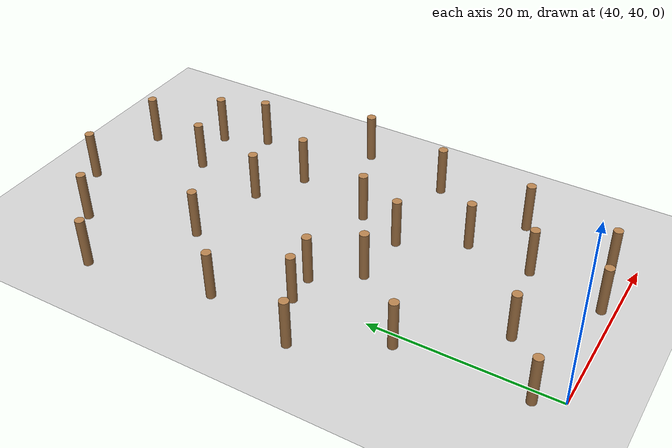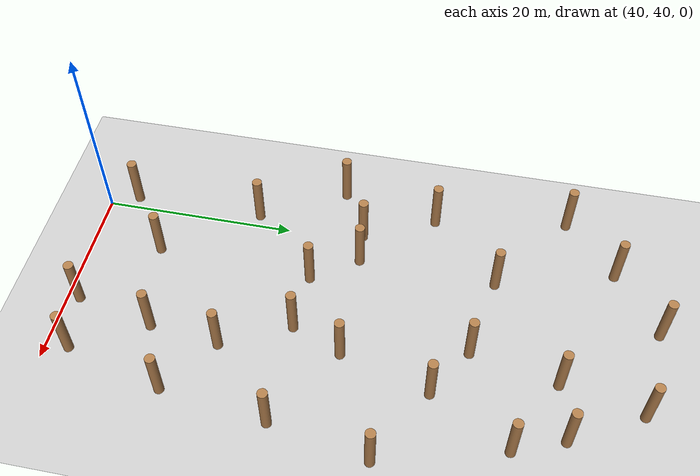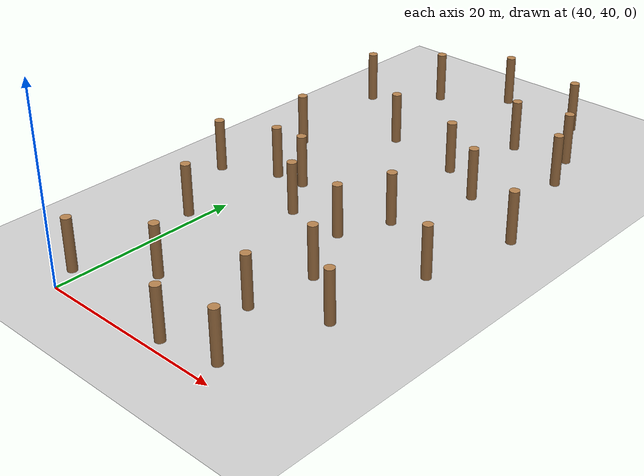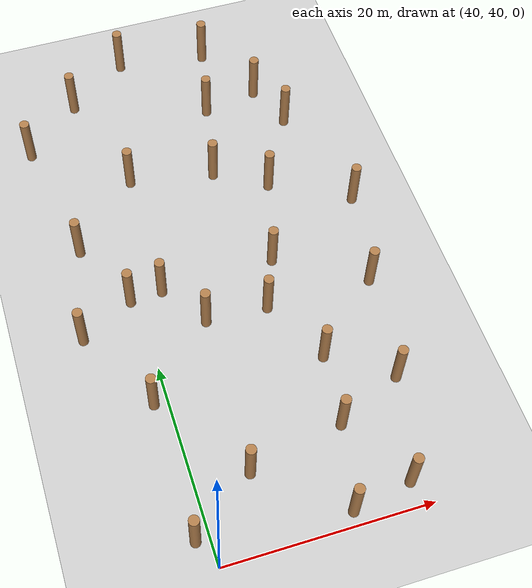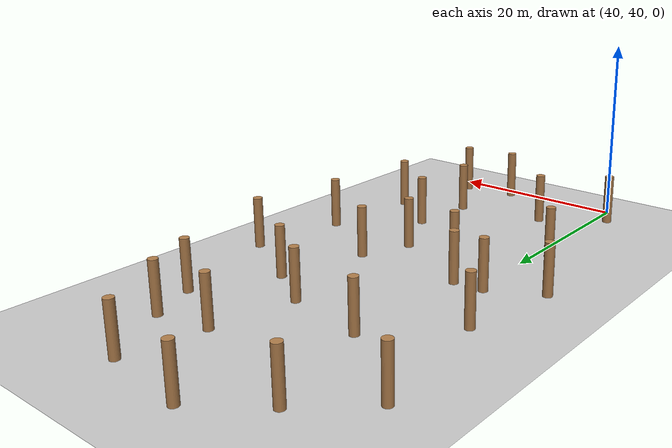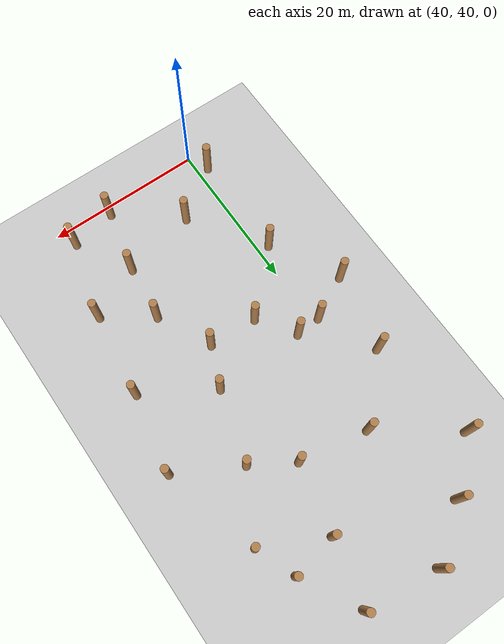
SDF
<sdf version="1.6">
 <world name="default">
  <model name="ground_plane">
   <static>1</static>
   <link name="link">
    <collision name="collision">
     <geometry><plane><normal>0 0 1</normal><size>100 100</size></plane></geometry>
     <surface><friction><ode><mu>100</mu><mu2>50</mu2></ode></friction></surface>
    </collision>
    <visual name="visual">
     <cast_shadows>0</cast_shadows>
     <geometry><plane><normal>0 0 1</normal><size>100 100</size></plane></geometry>
     <material>
      <script><uri>file://media/materials/scripts/gazebo.material</uri><name>Gazebo/Grey</name></script>
     </material>
    </visual>
   </link>
  </model>
  <model name="WoodPillars_1">
   <link name="link_clone_12">
    <inertial>
     <mass>1</mass>
     <inertia><ixx>0.145833</ixx><ixy>0</ixy><ixz>0</ixz><iyy>0.145833</iyy><iyz>0</iyz><izz>0.125</izz></inertia>
    </inertial>
    <pose>36.6063 2.3916 -3e-06 0 -0 -0.001289</pose>
    <visual name="visual">
     <geometry><cylinder><radius>0.5</radius><length>5.50507</length></cylinder></geometry>
     <material>
      <script><name>Gazebo/Wood</name><uri>file://media/materials/scripts/gazebo.material</uri></script>
      <shader type="pixel"/>
     </material>
    </visual>
    <collision name="collision">
     <geometry><cylinder><radius>0.5</radius><length>5.50507</length></cylinder></geometry>
     <surface>
      <friction>
       <ode><mu>1</mu><mu2>1</mu2><fdir1>0 0 0</fdir1><slip1>0</slip1><slip2>0</slip2></ode>
       <torsional>
        <coefficient>1</coefficient>
        <patch_radius>0</patch_radius>
        <surface_radius>0</surface_radius>
        <use_patch_radius>1</use_patch_radius>
        <ode><slip>0</slip></ode>
       </torsional>
      </friction>
      <bounce><restitution_coefficient>0</restitution_coefficient><threshold>1e+06</threshold></bounce>
      <contact>
       <collide_without_contact>0</collide_without_contact>
       <collide_without_contact_bitmask>1</collide_without_contact_bitmask>
       <collide_bitmask>1</collide_bitmask>
       <ode>
        <soft_cfm>0</soft_cfm>
        <soft_erp>0.2</soft_erp>
        <kp>1e+13</kp>
        <kd>1</kd>
        <max_vel>0.01</max_vel>
        <min_depth>0</min_depth>
       </ode>
       <bullet>
        <split_impulse>1</split_impulse>
        <split_impulse_penetration_threshold>-0.01</split_impulse_penetration_threshold>
        <soft_cfm>0</soft_cfm>
        <soft_erp>0.2</soft_erp>
        <kp>1e+13</kp>
        <kd>1</kd>
       </bullet>
      </contact>
     </surface>
    </collision>
   </link>
   <link name="link_clone_13">
    <inertial>
     <mass>1</mass>
     <inertia><ixx>0.145833</ixx><ixy>0</ixy><ixz>0</ixz><iyy>0.145833</iyy><iyz>0</iyz><izz>0.125</izz></inertia>
    </inertial>
    <pose>32.2715 -23.3528 -3e-06 0 -0 -0.001289</pose>
    <visual name="visual">
     <geometry><cylinder><radius>0.5</radius><length>5.50507</length></cylinder></geometry>
     <material>
      <script><name>Gazebo/Wood</name><uri>file://media/materials/scripts/gazebo.material</uri></script>
      <shader type="pixel"/>
     </material>
    </visual>
    <collision name="collision">
     <geometry><cylinder><radius>0.5</radius><length>5.50507</length></cylinder></geometry>
     <surface>
      <friction>
       <ode><mu>1</mu><mu2>1</mu2><fdir1>0 0 0</fdir1><slip1>0</slip1><slip2>0</slip2></ode>
       <torsional>
        <coefficient>1</coefficient>
        <patch_radius>0</patch_radius>
        <surface_radius>0</surface_radius>
        <use_patch_radius>1</use_patch_radius>
        <ode><slip>0</slip></ode>
       </torsional>
      </friction>
      <bounce><restitution_coefficient>0</restitution_coefficient><threshold>1e+06</threshold></bounce>
      <contact>
       <collide_without_contact>0</collide_without_contact>
       <collide_without_contact_bitmask>1</collide_without_contact_bitmask>
       <collide_bitmask>1</collide_bitmask>
       <ode>
        <soft_cfm>0</soft_cfm>
        <soft_erp>0.2</soft_erp>
        <kp>1e+13</kp>
        <kd>1</kd>
        <max_vel>0.01</max_vel>
        <min_depth>0</min_depth>
       </ode>
       <bullet>
        <split_impulse>1</split_impulse>
        <split_impulse_penetration_threshold>-0.01</split_impulse_penetration_threshold>
        <soft_cfm>0</soft_cfm>
        <soft_erp>0.2</soft_erp>
        <kp>1e+13</kp>
        <kd>1</kd>
       </bullet>
      </contact>
     </surface>
    </collision>
   </link>
   <link name="link_clone_16">
    <inertial>
     <mass>1</mass>
     <inertia><ixx>0.145833</ixx><ixy>0</ixy><ixz>0</ixz><iyy>0.145833</iyy><iyz>0</iyz><izz>0.125</izz></inertia>
    </inertial>
    <pose>32.9662 -11.9429 -3e-06 0 -0 -0.001289</pose>
    <visual name="visual">
     <geometry><cylinder><radius>0.5</radius><length>5.50507</length></cylinder></geometry>
     <material>
      <script><name>Gazebo/Wood</name><uri>file://media/materials/scripts/gazebo.material</uri></script>
      <shader type="pixel"/>
     </material>
    </visual>
    <collision name="collision">
     <geometry><cylinder><radius>0.5</radius><length>5.50507</length></cylinder></geometry>
     <surface>
      <friction>
       <ode><mu>1</mu><mu2>1</mu2><fdir1>0 0 0</fdir1><slip1>0</slip1><slip2>0</slip2></ode>
       <torsional>
        <coefficient>1</coefficient>
        <patch_radius>0</patch_radius>
        <surface_radius>0</surface_radius>
        <use_patch_radius>1</use_patch_radius>
        <ode><slip>0</slip></ode>
       </torsional>
      </friction>
      <bounce><restitution_coefficient>0</restitution_coefficient><threshold>1e+06</threshold></bounce>
      <contact>
       <collide_without_contact>0</collide_without_contact>
       <collide_without_contact_bitmask>1</collide_without_contact_bitmask>
       <collide_bitmask>1</collide_bitmask>
       <ode>
        <soft_cfm>0</soft_cfm>
        <soft_erp>0.2</soft_erp>
        <kp>1e+13</kp>
        <kd>1</kd>
        <max_vel>0.01</max_vel>
        <min_depth>0</min_depth>
       </ode>
       <bullet>
        <split_impulse>1</split_impulse>
        <split_impulse_penetration_threshold>-0.01</split_impulse_penetration_threshold>
        <soft_cfm>0</soft_cfm>
        <soft_erp>0.2</soft_erp>
        <kp>1e+13</kp>
        <kd>1</kd>
       </bullet>
      </contact>
     </surface>
    </collision>
   </link>
   <link name="link_clone_22">
    <inertial>
     <mass>1</mass>
     <inertia><ixx>0.145833</ixx><ixy>0</ixy><ixz>0</ixz><iyy>0.145833</iyy><iyz>0</iyz><izz>0.125</izz></inertia>
    </inertial>
    <pose>27.313 9.05961 -2e-06 0 -0 -0.001289</pose>
    <visual name="visual">
     <geometry><cylinder><radius>0.5</radius><length>5.50507</length></cylinder></geometry>
     <material>
      <script><name>Gazebo/Wood</name><uri>file://media/materials/scripts/gazebo.material</uri></script>
      <shader type="pixel"/>
     </material>
    </visual>
    <collision name="collision">
     <geometry><cylinder><radius>0.5</radius><length>5.50507</length></cylinder></geometry>
     <surface>
      <friction>
       <ode><mu>1</mu><mu2>1</mu2><fdir1>0 0 0</fdir1><slip1>0</slip1><slip2>0</slip2></ode>
       <torsional>
        <coefficient>1</coefficient>
        <patch_radius>0</patch_radius>
        <surface_radius>0</surface_radius>
        <use_patch_radius>1</use_patch_radius>
        <ode><slip>0</slip></ode>
       </torsional>
      </friction>
      <bounce><restitution_coefficient>0</restitution_coefficient><threshold>1e+06</threshold></bounce>
      <contact>
       <collide_without_contact>0</collide_without_contact>
       <collide_without_contact_bitmask>1</collide_without_contact_bitmask>
       <collide_bitmask>1</collide_bitmask>
       <ode>
        <soft_cfm>0</soft_cfm>
        <soft_erp>0.2</soft_erp>
        <kp>1e+13</kp>
        <kd>1</kd>
        <max_vel>0.01</max_vel>
        <min_depth>0</min_depth>
       </ode>
       <bullet>
        <split_impulse>1</split_impulse>
        <split_impulse_penetration_threshold>-0.01</split_impulse_penetration_threshold>
        <soft_cfm>0</soft_cfm>
        <soft_erp>0.2</soft_erp>
        <kp>1e+13</kp>
        <kd>1</kd>
       </bullet>
      </contact>
     </surface>
    </collision>
   </link>
   <link name="link_clone_23">
    <inertial>
     <mass>1</mass>
     <inertia><ixx>0.145833</ixx><ixy>0</ixy><ixz>0</ixz><iyy>0.145833</iyy><iyz>0</iyz><izz>0.125</izz></inertia>
    </inertial>
    <pose>29.5176 -4.71623 -3e-06 0 -0 -0.001289</pose>
    <visual name="visual">
     <geometry><cylinder><radius>0.5</radius><length>5.50507</length></cylinder></geometry>
     <material>
      <script><name>Gazebo/Wood</name><uri>file://media/materials/scripts/gazebo.material</uri></script>
      <shader type="pixel"/>
     </material>
    </visual>
    <collision name="collision">
     <geometry><cylinder><radius>0.5</radius><length>5.50507</length></cylinder></geometry>
     <surface>
      <friction>
       <ode><mu>1</mu><mu2>1</mu2><fdir1>0 0 0</fdir1><slip1>0</slip1><slip2>0</slip2></ode>
       <torsional>
        <coefficient>1</coefficient>
        <patch_radius>0</patch_radius>
        <surface_radius>0</surface_radius>
        <use_patch_radius>1</use_patch_radius>
        <ode><slip>0</slip></ode>
       </torsional>
      </friction>
      <bounce><restitution_coefficient>0</restitution_coefficient><threshold>1e+06</threshold></bounce>
      <contact>
       <collide_without_contact>0</collide_without_contact>
       <collide_without_contact_bitmask>1</collide_without_contact_bitmask>
       <collide_bitmask>1</collide_bitmask>
       <ode>
        <soft_cfm>0</soft_cfm>
        <soft_erp>0.2</soft_erp>
        <kp>1e+13</kp>
        <kd>1</kd>
        <max_vel>0.01</max_vel>
        <min_depth>0</min_depth>
       </ode>
       <bullet>
        <split_impulse>1</split_impulse>
        <split_impulse_penetration_threshold>-0.01</split_impulse_penetration_threshold>
        <soft_cfm>0</soft_cfm>
        <soft_erp>0.2</soft_erp>
        <kp>1e+13</kp>
        <kd>1</kd>
       </bullet>
      </contact>
     </surface>
    </collision>
   </link>
   <link name="link_clone_28">
    <inertial>
     <mass>1</mass>
     <inertia><ixx>0.145833</ixx><ixy>0</ixy><ixz>0</ixz><iyy>0.145833</iyy><iyz>0</iyz><izz>0.125</izz></inertia>
    </inertial>
    <pose>27.5353 -14.766 -3e-06 0 -0 -0.001289</pose>
    <visual name="visual">
     <geometry><cylinder><radius>0.5</radius><length>5.50507</length></cylinder></geometry>
     <material>
      <script><name>Gazebo/Wood</name><uri>file://media/materials/scripts/gazebo.material</uri></script>
      <shader type="pixel"/>
     </material>
    </visual>
    <collision name="collision">
     <geometry><cylinder><radius>0.5</radius><length>5.50507</length></cylinder></geometry>
     <surface>
      <friction>
       <ode><mu>1</mu><mu2>1</mu2><fdir1>0 0 0</fdir1><slip1>0</slip1><slip2>0</slip2></ode>
       <torsional>
        <coefficient>1</coefficient>
        <patch_radius>0</patch_radius>
        <surface_radius>0</surface_radius>
        <use_patch_radius>1</use_patch_radius>
        <ode><slip>0</slip></ode>
       </torsional>
      </friction>
      <bounce><restitution_coefficient>0</restitution_coefficient><threshold>1e+06</threshold></bounce>
      <contact>
       <collide_without_contact>0</collide_without_contact>
       <collide_without_contact_bitmask>1</collide_without_contact_bitmask>
       <collide_bitmask>1</collide_bitmask>
       <ode>
        <soft_cfm>0</soft_cfm>
        <soft_erp>0.2</soft_erp>
        <kp>1e+13</kp>
        <kd>1</kd>
        <max_vel>0.01</max_vel>
        <min_depth>0</min_depth>
       </ode>
       <bullet>
        <split_impulse>1</split_impulse>
        <split_impulse_penetration_threshold>-0.01</split_impulse_penetration_threshold>
        <soft_cfm>0</soft_cfm>
        <soft_erp>0.2</soft_erp>
        <kp>1e+13</kp>
        <kd>1</kd>
       </bullet>
      </contact>
     </surface>
    </collision>
   </link>
   <link name="link_clone_29">
    <inertial>
     <mass>1</mass>
     <inertia><ixx>0.145833</ixx><ixy>0</ixy><ixz>0</ixz><iyy>0.145833</iyy><iyz>0</iyz><izz>0.125</izz></inertia>
    </inertial>
    <pose>39.4401 -16.2696 -4e-06 0 -0 -0.001289</pose>
    <visual name="visual">
     <geometry><cylinder><radius>0.5</radius><length>5.50507</length></cylinder></geometry>
     <material>
      <script><name>Gazebo/Wood</name><uri>file://media/materials/scripts/gazebo.material</uri></script>
      <shader type="pixel"/>
     </material>
    </visual>
    <collision name="collision">
     <geometry><cylinder><radius>0.5</radius><length>5.50507</length></cylinder></geometry>
     <surface>
      <friction>
       <ode><mu>1</mu><mu2>1</mu2><fdir1>0 0 0</fdir1><slip1>0</slip1><slip2>0</slip2></ode>
       <torsional>
        <coefficient>1</coefficient>
        <patch_radius>0</patch_radius>
        <surface_radius>0</surface_radius>
        <use_patch_radius>1</use_patch_radius>
        <ode><slip>0</slip></ode>
       </torsional>
      </friction>
      <bounce><restitution_coefficient>0</restitution_coefficient><threshold>1e+06</threshold></bounce>
      <contact>
       <collide_without_contact>0</collide_without_contact>
       <collide_without_contact_bitmask>1</collide_without_contact_bitmask>
       <collide_bitmask>1</collide_bitmask>
       <ode>
        <soft_cfm>0</soft_cfm>
        <soft_erp>0.2</soft_erp>
        <kp>1e+13</kp>
        <kd>1</kd>
        <max_vel>0.01</max_vel>
        <min_depth>0</min_depth>
       </ode>
       <bullet>
        <split_impulse>1</split_impulse>
        <split_impulse_penetration_threshold>-0.01</split_impulse_penetration_threshold>
        <soft_cfm>0</soft_cfm>
        <soft_erp>0.2</soft_erp>
        <kp>1e+13</kp>
        <kd>1</kd>
       </bullet>
      </contact>
     </surface>
    </collision>
   </link>
   <link name="link_clone_33">
    <inertial>
     <mass>1</mass>
     <inertia><ixx>0.145833</ixx><ixy>0</ixy><ixz>0</ixz><iyy>0.145833</iyy><iyz>0</iyz><izz>0.125</izz></inertia>
    </inertial>
    <pose>39.6457 18.8804 -3e-06 0 -0 -0.001289</pose>
    <visual name="visual">
     <geometry><cylinder><radius>0.5</radius><length>5.50507</length></cylinder></geometry>
     <material>
      <script><name>Gazebo/Wood</name><uri>file://media/materials/scripts/gazebo.material</uri></script>
      <shader type="pixel"/>
     </material>
    </visual>
    <collision name="collision">
     <geometry><cylinder><radius>0.5</radius><length>5.50507</length></cylinder></geometry>
     <surface>
      <friction>
       <ode><mu>1</mu><mu2>1</mu2><fdir1>0 0 0</fdir1><slip1>0</slip1><slip2>0</slip2></ode>
       <torsional>
        <coefficient>1</coefficient>
        <patch_radius>0</patch_radius>
        <surface_radius>0</surface_radius>
        <use_patch_radius>1</use_patch_radius>
        <ode><slip>0</slip></ode>
       </torsional>
      </friction>
      <bounce><restitution_coefficient>0</restitution_coefficient><threshold>1e+06</threshold></bounce>
      <contact>
       <collide_without_contact>0</collide_without_contact>
       <collide_without_contact_bitmask>1</collide_without_contact_bitmask>
       <collide_bitmask>1</collide_bitmask>
       <ode>
        <soft_cfm>0</soft_cfm>
        <soft_erp>0.2</soft_erp>
        <kp>1e+13</kp>
        <kd>1</kd>
        <max_vel>0.01</max_vel>
        <min_depth>0</min_depth>
       </ode>
       <bullet>
        <split_impulse>1</split_impulse>
        <split_impulse_penetration_threshold>-0.01</split_impulse_penetration_threshold>
        <soft_cfm>0</soft_cfm>
        <soft_erp>0.2</soft_erp>
        <kp>1e+13</kp>
        <kd>1</kd>
       </bullet>
      </contact>
     </surface>
    </collision>
   </link>
   <link name="link_clone_5">
    <inertial>
     <mass>1</mass>
     <inertia><ixx>0.145833</ixx><ixy>0</ixy><ixz>0</ixz><iyy>0.145833</iyy><iyz>0</iyz><izz>0.125</izz></inertia>
    </inertial>
    <pose>33.2189 14.316 -3e-06 0 -0 -0.001289</pose>
    <visual name="visual">
     <geometry><cylinder><radius>0.5</radius><length>5.50507</length></cylinder></geometry>
     <material>
      <script><name>Gazebo/Wood</name><uri>file://media/materials/scripts/gazebo.material</uri></script>
      <shader type="pixel"/>
     </material>
    </visual>
    <collision name="collision">
     <geometry><cylinder><radius>0.5</radius><length>5.50507</length></cylinder></geometry>
     <surface>
      <friction>
       <ode><mu>1</mu><mu2>1</mu2><fdir1>0 0 0</fdir1><slip1>0</slip1><slip2>0</slip2></ode>
       <torsional>
        <coefficient>1</coefficient>
        <patch_radius>0</patch_radius>
        <surface_radius>0</surface_radius>
        <use_patch_radius>1</use_patch_radius>
        <ode><slip>0</slip></ode>
       </torsional>
      </friction>
      <bounce><restitution_coefficient>0</restitution_coefficient><threshold>1e+06</threshold></bounce>
      <contact>
       <collide_without_contact>0</collide_without_contact>
       <collide_without_contact_bitmask>1</collide_without_contact_bitmask>
       <collide_bitmask>1</collide_bitmask>
       <ode>
        <soft_cfm>0</soft_cfm>
        <soft_erp>0.2</soft_erp>
        <kp>1e+13</kp>
        <kd>1</kd>
        <max_vel>0.01</max_vel>
        <min_depth>0</min_depth>
       </ode>
       <bullet>
        <split_impulse>1</split_impulse>
        <split_impulse_penetration_threshold>-0.01</split_impulse_penetration_threshold>
        <soft_cfm>0</soft_cfm>
        <soft_erp>0.2</soft_erp>
        <kp>1e+13</kp>
        <kd>1</kd>
       </bullet>
      </contact>
     </surface>
    </collision>
   </link>
   <link name="link_clone_6">
    <inertial>
     <mass>1</mass>
     <inertia><ixx>0.145833</ixx><ixy>0</ixy><ixz>0</ixz><iyy>0.145833</iyy><iyz>0</iyz><izz>0.125</izz></inertia>
    </inertial>
    <pose>36.2258 -11.6926 -3e-06 0 -0 -0.001289</pose>
    <visual name="visual">
     <geometry><cylinder><radius>0.5</radius><length>5.50507</length></cylinder></geometry>
     <material>
      <script><name>Gazebo/Wood</name><uri>file://media/materials/scripts/gazebo.material</uri></script>
      <shader type="pixel"/>
     </material>
    </visual>
    <collision name="collision">
     <geometry><cylinder><radius>0.5</radius><length>5.50507</length></cylinder></geometry>
     <surface>
      <friction>
       <ode><mu>1</mu><mu2>1</mu2><fdir1>0 0 0</fdir1><slip1>0</slip1><slip2>0</slip2></ode>
       <torsional>
        <coefficient>1</coefficient>
        <patch_radius>0</patch_radius>
        <surface_radius>0</surface_radius>
        <use_patch_radius>1</use_patch_radius>
        <ode><slip>0</slip></ode>
       </torsional>
      </friction>
      <bounce><restitution_coefficient>0</restitution_coefficient><threshold>1e+06</threshold></bounce>
      <contact>
       <collide_without_contact>0</collide_without_contact>
       <collide_without_contact_bitmask>1</collide_without_contact_bitmask>
       <collide_bitmask>1</collide_bitmask>
       <ode>
        <soft_cfm>0</soft_cfm>
        <soft_erp>0.2</soft_erp>
        <kp>1e+13</kp>
        <kd>1</kd>
        <max_vel>0.01</max_vel>
        <min_depth>0</min_depth>
       </ode>
       <bullet>
        <split_impulse>1</split_impulse>
        <split_impulse_penetration_threshold>-0.01</split_impulse_penetration_threshold>
        <soft_cfm>0</soft_cfm>
        <soft_erp>0.2</soft_erp>
        <kp>1e+13</kp>
        <kd>1</kd>
       </bullet>
      </contact>
     </surface>
    </collision>
   </link>
   <static>0</static>
   <pose>6.34212 79.7178 2.75253 0 -0 0.001542</pose>
  </model>
  <model name="WoodPillars_2">
   <link name="link">
    <inertial>
     <mass>1</mass>
     <inertia><ixx>0.145833</ixx><ixy>0</ixy><ixz>0</ixz><iyy>0.145833</iyy><iyz>0</iyz><izz>0.125</izz></inertia>
    </inertial>
    <visual name="visual">
     <geometry><cylinder><radius>0.5</radius><length>5.50507</length></cylinder></geometry>
     <material>
      <script><name>Gazebo/Wood</name><uri>file://media/materials/scripts/gazebo.material</uri></script>
     </material>
    </visual>
    <collision name="collision">
     <geometry><cylinder><radius>0.5</radius><length>5.50507</length></cylinder></geometry>
     <surface>
      <friction>
       <ode><mu>1</mu><mu2>1</mu2><fdir1>0 0 0</fdir1><slip1>0</slip1><slip2>0</slip2></ode>
       <torsional>
        <coefficient>1</coefficient>
        <patch_radius>0</patch_radius>
        <surface_radius>0</surface_radius>
        <use_patch_radius>1</use_patch_radius>
        <ode><slip>0</slip></ode>
       </torsional>
      </friction>
      <bounce><restitution_coefficient>0</restitution_coefficient><threshold>1e+06</threshold></bounce>
      <contact>
       <collide_without_contact>0</collide_without_contact>
       <collide_without_contact_bitmask>1</collide_without_contact_bitmask>
       <collide_bitmask>1</collide_bitmask>
       <ode>
        <soft_cfm>0</soft_cfm>
        <soft_erp>0.2</soft_erp>
        <kp>1e+13</kp>
        <kd>1</kd>
        <max_vel>0.01</max_vel>
        <min_depth>0</min_depth>
       </ode>
       <bullet>
        <split_impulse>1</split_impulse>
        <split_impulse_penetration_threshold>-0.01</split_impulse_penetration_threshold>
        <soft_cfm>0</soft_cfm>
        <soft_erp>0.2</soft_erp>
        <kp>1e+13</kp>
        <kd>1</kd>
       </bullet>
      </contact>
     </surface>
    </collision>
   </link>
   <link name="link_clone_10">
    <inertial>
     <mass>1</mass>
     <inertia><ixx>0.145833</ixx><ixy>0</ixy><ixz>0</ixz><iyy>0.145833</iyy><iyz>0</iyz><izz>0.125</izz></inertia>
    </inertial>
    <pose>2.50237 12.8939 0 0 -0 -0.001289</pose>
    <visual name="visual">
     <geometry><cylinder><radius>0.5</radius><length>5.50507</length></cylinder></geometry>
     <material>
      <script><name>Gazebo/Wood</name><uri>file://media/materials/scripts/gazebo.material</uri></script>
      <shader type="pixel"/>
     </material>
    </visual>
    <collision name="collision">
     <geometry><cylinder><radius>0.5</radius><length>5.50507</length></cylinder></geometry>
     <surface>
      <friction>
       <ode><mu>1</mu><mu2>1</mu2><fdir1>0 0 0</fdir1><slip1>0</slip1><slip2>0</slip2></ode>
       <torsional>
        <coefficient>1</coefficient>
        <patch_radius>0</patch_radius>
        <surface_radius>0</surface_radius>
        <use_patch_radius>1</use_patch_radius>
        <ode><slip>0</slip></ode>
       </torsional>
      </friction>
      <bounce><restitution_coefficient>0</restitution_coefficient><threshold>1e+06</threshold></bounce>
      <contact>
       <collide_without_contact>0</collide_without_contact>
       <collide_without_contact_bitmask>1</collide_without_contact_bitmask>
       <collide_bitmask>1</collide_bitmask>
       <ode>
        <soft_cfm>0</soft_cfm>
        <soft_erp>0.2</soft_erp>
        <kp>1e+13</kp>
        <kd>1</kd>
        <max_vel>0.01</max_vel>
        <min_depth>0</min_depth>
       </ode>
       <bullet>
        <split_impulse>1</split_impulse>
        <split_impulse_penetration_threshold>-0.01</split_impulse_penetration_threshold>
        <soft_cfm>0</soft_cfm>
        <soft_erp>0.2</soft_erp>
        <kp>1e+13</kp>
        <kd>1</kd>
       </bullet>
      </contact>
     </surface>
    </collision>
   </link>
   <link name="link_clone_19">
    <inertial>
     <mass>1</mass>
     <inertia><ixx>0.145833</ixx><ixy>0</ixy><ixz>0</ixz><iyy>0.145833</iyy><iyz>0</iyz><izz>0.125</izz></inertia>
    </inertial>
    <pose>-3.28611 11.8265 -0 0 -0 -0.001289</pose>
    <visual name="visual">
     <geometry><cylinder><radius>0.5</radius><length>5.50507</length></cylinder></geometry>
     <material>
      <script><name>Gazebo/Wood</name><uri>file://media/materials/scripts/gazebo.material</uri></script>
      <shader type="pixel"/>
     </material>
    </visual>
    <collision name="collision">
     <geometry><cylinder><radius>0.5</radius><length>5.50507</length></cylinder></geometry>
     <surface>
      <friction>
       <ode><mu>1</mu><mu2>1</mu2><fdir1>0 0 0</fdir1><slip1>0</slip1><slip2>0</slip2></ode>
       <torsional>
        <coefficient>1</coefficient>
        <patch_radius>0</patch_radius>
        <surface_radius>0</surface_radius>
        <use_patch_radius>1</use_patch_radius>
        <ode><slip>0</slip></ode>
       </torsional>
      </friction>
      <bounce><restitution_coefficient>0</restitution_coefficient><threshold>1e+06</threshold></bounce>
      <contact>
       <collide_without_contact>0</collide_without_contact>
       <collide_without_contact_bitmask>1</collide_without_contact_bitmask>
       <collide_bitmask>1</collide_bitmask>
       <ode>
        <soft_cfm>0</soft_cfm>
        <soft_erp>0.2</soft_erp>
        <kp>1e+13</kp>
        <kd>1</kd>
        <max_vel>0.01</max_vel>
        <min_depth>0</min_depth>
       </ode>
       <bullet>
        <split_impulse>1</split_impulse>
        <split_impulse_penetration_threshold>-0.01</split_impulse_penetration_threshold>
        <soft_cfm>0</soft_cfm>
        <soft_erp>0.2</soft_erp>
        <kp>1e+13</kp>
        <kd>1</kd>
       </bullet>
      </contact>
     </surface>
    </collision>
   </link>
   <link name="link_clone_20">
    <inertial>
     <mass>1</mass>
     <inertia><ixx>0.145833</ixx><ixy>0</ixy><ixz>0</ixz><iyy>0.145833</iyy><iyz>0</iyz><izz>0.125</izz></inertia>
    </inertial>
    <pose>-2.64423 -9.12396 -0 0 -0 -0.001289</pose>
    <visual name="visual">
     <geometry><cylinder><radius>0.5</radius><length>5.50507</length></cylinder></geometry>
     <material>
      <script><name>Gazebo/Wood</name><uri>file://media/materials/scripts/gazebo.material</uri></script>
      <shader type="pixel"/>
     </material>
    </visual>
    <collision name="collision">
     <geometry><cylinder><radius>0.5</radius><length>5.50507</length></cylinder></geometry>
     <surface>
      <friction>
       <ode><mu>1</mu><mu2>1</mu2><fdir1>0 0 0</fdir1><slip1>0</slip1><slip2>0</slip2></ode>
       <torsional>
        <coefficient>1</coefficient>
        <patch_radius>0</patch_radius>
        <surface_radius>0</surface_radius>
        <use_patch_radius>1</use_patch_radius>
        <ode><slip>0</slip></ode>
       </torsional>
      </friction>
      <bounce><restitution_coefficient>0</restitution_coefficient><threshold>1e+06</threshold></bounce>
      <contact>
       <collide_without_contact>0</collide_without_contact>
       <collide_without_contact_bitmask>1</collide_without_contact_bitmask>
       <collide_bitmask>1</collide_bitmask>
       <ode>
        <soft_cfm>0</soft_cfm>
        <soft_erp>0.2</soft_erp>
        <kp>1e+13</kp>
        <kd>1</kd>
        <max_vel>0.01</max_vel>
        <min_depth>0</min_depth>
       </ode>
       <bullet>
        <split_impulse>1</split_impulse>
        <split_impulse_penetration_threshold>-0.01</split_impulse_penetration_threshold>
        <soft_cfm>0</soft_cfm>
        <soft_erp>0.2</soft_erp>
        <kp>1e+13</kp>
        <kd>1</kd>
       </bullet>
      </contact>
     </surface>
    </collision>
   </link>
   <link name="link_clone_24">
    <inertial>
     <mass>1</mass>
     <inertia><ixx>0.145833</ixx><ixy>0</ixy><ixz>0</ixz><iyy>0.145833</iyy><iyz>0</iyz><izz>0.125</izz></inertia>
    </inertial>
    <pose>7.84688 -4.26113 -1e-06 0 -0 -0.001289</pose>
    <visual name="visual">
     <geometry><cylinder><radius>0.5</radius><length>5.50507</length></cylinder></geometry>
     <material>
      <script><name>Gazebo/Wood</name><uri>file://media/materials/scripts/gazebo.material</uri></script>
      <shader type="pixel"/>
     </material>
    </visual>
    <collision name="collision">
     <geometry><cylinder><radius>0.5</radius><length>5.50507</length></cylinder></geometry>
     <surface>
      <friction>
       <ode><mu>1</mu><mu2>1</mu2><fdir1>0 0 0</fdir1><slip1>0</slip1><slip2>0</slip2></ode>
       <torsional>
        <coefficient>1</coefficient>
        <patch_radius>0</patch_radius>
        <surface_radius>0</surface_radius>
        <use_patch_radius>1</use_patch_radius>
        <ode><slip>0</slip></ode>
       </torsional>
      </friction>
      <bounce><restitution_coefficient>0</restitution_coefficient><threshold>1e+06</threshold></bounce>
      <contact>
       <collide_without_contact>0</collide_without_contact>
       <collide_without_contact_bitmask>1</collide_without_contact_bitmask>
       <collide_bitmask>1</collide_bitmask>
       <ode>
        <soft_cfm>0</soft_cfm>
        <soft_erp>0.2</soft_erp>
        <kp>1e+13</kp>
        <kd>1</kd>
        <max_vel>0.01</max_vel>
        <min_depth>0</min_depth>
       </ode>
       <bullet>
        <split_impulse>1</split_impulse>
        <split_impulse_penetration_threshold>-0.01</split_impulse_penetration_threshold>
        <soft_cfm>0</soft_cfm>
        <soft_erp>0.2</soft_erp>
        <kp>1e+13</kp>
        <kd>1</kd>
       </bullet>
      </contact>
     </surface>
    </collision>
   </link>
   <link name="link_clone_27">
    <inertial>
     <mass>1</mass>
     <inertia><ixx>0.145833</ixx><ixy>0</ixy><ixz>0</ixz><iyy>0.145833</iyy><iyz>0</iyz><izz>0.125</izz></inertia>
    </inertial>
    <pose>4.38632 -25.0605 -1e-06 0 -0 -0.001289</pose>
    <visual name="visual">
     <geometry><cylinder><radius>0.5</radius><length>5.50507</length></cylinder></geometry>
     <material>
      <script><name>Gazebo/Wood</name><uri>file://media/materials/scripts/gazebo.material</uri></script>
      <shader type="pixel"/>
     </material>
    </visual>
    <collision name="collision">
     <geometry><cylinder><radius>0.5</radius><length>5.50507</length></cylinder></geometry>
     <surface>
      <friction>
       <ode><mu>1</mu><mu2>1</mu2><fdir1>0 0 0</fdir1><slip1>0</slip1><slip2>0</slip2></ode>
       <torsional>
        <coefficient>1</coefficient>
        <patch_radius>0</patch_radius>
        <surface_radius>0</surface_radius>
        <use_patch_radius>1</use_patch_radius>
        <ode><slip>0</slip></ode>
       </torsional>
      </friction>
      <bounce><restitution_coefficient>0</restitution_coefficient><threshold>1e+06</threshold></bounce>
      <contact>
       <collide_without_contact>0</collide_without_contact>
       <collide_without_contact_bitmask>1</collide_without_contact_bitmask>
       <collide_bitmask>1</collide_bitmask>
       <ode>
        <soft_cfm>0</soft_cfm>
        <soft_erp>0.2</soft_erp>
        <kp>1e+13</kp>
        <kd>1</kd>
        <max_vel>0.01</max_vel>
        <min_depth>0</min_depth>
       </ode>
       <bullet>
        <split_impulse>1</split_impulse>
        <split_impulse_penetration_threshold>-0.01</split_impulse_penetration_threshold>
        <soft_cfm>0</soft_cfm>
        <soft_erp>0.2</soft_erp>
        <kp>1e+13</kp>
        <kd>1</kd>
       </bullet>
      </contact>
     </surface>
    </collision>
   </link>
   <link name="link_clone_30">
    <inertial>
     <mass>1</mass>
     <inertia><ixx>0.145833</ixx><ixy>0</ixy><ixz>0</ixz><iyy>0.145833</iyy><iyz>0</iyz><izz>0.125</izz></inertia>
    </inertial>
    <pose>4.46339 7.97492 0 0 -0 -0.001289</pose>
    <visual name="visual">
     <geometry><cylinder><radius>0.5</radius><length>5.50507</length></cylinder></geometry>
     <material>
      <script><name>Gazebo/Wood</name><uri>file://media/materials/scripts/gazebo.material</uri></script>
      <shader type="pixel"/>
     </material>
    </visual>
    <collision name="collision">
     <geometry><cylinder><radius>0.5</radius><length>5.50507</length></cylinder></geometry>
     <surface>
      <friction>
       <ode><mu>1</mu><mu2>1</mu2><fdir1>0 0 0</fdir1><slip1>0</slip1><slip2>0</slip2></ode>
       <torsional>
        <coefficient>1</coefficient>
        <patch_radius>0</patch_radius>
        <surface_radius>0</surface_radius>
        <use_patch_radius>1</use_patch_radius>
        <ode><slip>0</slip></ode>
       </torsional>
      </friction>
      <bounce><restitution_coefficient>0</restitution_coefficient><threshold>1e+06</threshold></bounce>
      <contact>
       <collide_without_contact>0</collide_without_contact>
       <collide_without_contact_bitmask>1</collide_without_contact_bitmask>
       <collide_bitmask>1</collide_bitmask>
       <ode>
        <soft_cfm>0</soft_cfm>
        <soft_erp>0.2</soft_erp>
        <kp>1e+13</kp>
        <kd>1</kd>
        <max_vel>0.01</max_vel>
        <min_depth>0</min_depth>
       </ode>
       <bullet>
        <split_impulse>1</split_impulse>
        <split_impulse_penetration_threshold>-0.01</split_impulse_penetration_threshold>
        <soft_cfm>0</soft_cfm>
        <soft_erp>0.2</soft_erp>
        <kp>1e+13</kp>
        <kd>1</kd>
       </bullet>
      </contact>
     </surface>
    </collision>
   </link>
   <link name="link_clone_31">
    <inertial>
     <mass>1</mass>
     <inertia><ixx>0.145833</ixx><ixy>0</ixy><ixz>0</ixz><iyy>0.145833</iyy><iyz>0</iyz><izz>0.125</izz></inertia>
    </inertial>
    <pose>-1.44135 19.9016 0 0 -0 -0.001289</pose>
    <visual name="visual">
     <geometry><cylinder><radius>0.5</radius><length>5.50507</length></cylinder></geometry>
     <material>
      <script><name>Gazebo/Wood</name><uri>file://media/materials/scripts/gazebo.material</uri></script>
      <shader type="pixel"/>
     </material>
    </visual>
    <collision name="collision">
     <geometry><cylinder><radius>0.5</radius><length>5.50507</length></cylinder></geometry>
     <surface>
      <friction>
       <ode><mu>1</mu><mu2>1</mu2><fdir1>0 0 0</fdir1><slip1>0</slip1><slip2>0</slip2></ode>
       <torsional>
        <coefficient>1</coefficient>
        <patch_radius>0</patch_radius>
        <surface_radius>0</surface_radius>
        <use_patch_radius>1</use_patch_radius>
        <ode><slip>0</slip></ode>
       </torsional>
      </friction>
      <bounce><restitution_coefficient>0</restitution_coefficient><threshold>1e+06</threshold></bounce>
      <contact>
       <collide_without_contact>0</collide_without_contact>
       <collide_without_contact_bitmask>1</collide_without_contact_bitmask>
       <collide_bitmask>1</collide_bitmask>
       <ode>
        <soft_cfm>0</soft_cfm>
        <soft_erp>0.2</soft_erp>
        <kp>1e+13</kp>
        <kd>1</kd>
        <max_vel>0.01</max_vel>
        <min_depth>0</min_depth>
       </ode>
       <bullet>
        <split_impulse>1</split_impulse>
        <split_impulse_penetration_threshold>-0.01</split_impulse_penetration_threshold>
        <soft_cfm>0</soft_cfm>
        <soft_erp>0.2</soft_erp>
        <kp>1e+13</kp>
        <kd>1</kd>
       </bullet>
      </contact>
     </surface>
    </collision>
   </link>
   <link name="link_clone_32">
    <inertial>
     <mass>1</mass>
     <inertia><ixx>0.145833</ixx><ixy>0</ixy><ixz>0</ixz><iyy>0.145833</iyy><iyz>0</iyz><izz>0.125</izz></inertia>
    </inertial>
    <pose>-4.82669 -14.2698 -0 0 -0 -0.001289</pose>
    <visual name="visual">
     <geometry><cylinder><radius>0.5</radius><length>5.50507</length></cylinder></geometry>
     <material>
      <script><name>Gazebo/Wood</name><uri>file://media/materials/scripts/gazebo.material</uri></script>
      <shader type="pixel"/>
     </material>
    </visual>
    <collision name="collision">
     <geometry><cylinder><radius>0.5</radius><length>5.50507</length></cylinder></geometry>
     <surface>
      <friction>
       <ode><mu>1</mu><mu2>1</mu2><fdir1>0 0 0</fdir1><slip1>0</slip1><slip2>0</slip2></ode>
       <torsional>
        <coefficient>1</coefficient>
        <patch_radius>0</patch_radius>
        <surface_radius>0</surface_radius>
        <use_patch_radius>1</use_patch_radius>
        <ode><slip>0</slip></ode>
       </torsional>
      </friction>
      <bounce><restitution_coefficient>0</restitution_coefficient><threshold>1e+06</threshold></bounce>
      <contact>
       <collide_without_contact>0</collide_without_contact>
       <collide_without_contact_bitmask>1</collide_without_contact_bitmask>
       <collide_bitmask>1</collide_bitmask>
       <ode>
        <soft_cfm>0</soft_cfm>
        <soft_erp>0.2</soft_erp>
        <kp>1e+13</kp>
        <kd>1</kd>
        <max_vel>0.01</max_vel>
        <min_depth>0</min_depth>
       </ode>
       <bullet>
        <split_impulse>1</split_impulse>
        <split_impulse_penetration_threshold>-0.01</split_impulse_penetration_threshold>
        <soft_cfm>0</soft_cfm>
        <soft_erp>0.2</soft_erp>
        <kp>1e+13</kp>
        <kd>1</kd>
       </bullet>
      </contact>
     </surface>
    </collision>
   </link>
   <link name="link_clone_35">
    <inertial>
     <mass>1</mass>
     <inertia><ixx>0.145833</ixx><ixy>0</ixy><ixz>0</ixz><iyy>0.145833</iyy><iyz>0</iyz><izz>0.125</izz></inertia>
    </inertial>
    <pose>-5.14728 3.10998 -0 0 -0 -0.001289</pose>
    <visual name="visual">
     <geometry><cylinder><radius>0.5</radius><length>5.50507</length></cylinder></geometry>
     <material>
      <script><name>Gazebo/Wood</name><uri>file://media/materials/scripts/gazebo.material</uri></script>
      <shader type="pixel"/>
     </material>
    </visual>
    <collision name="collision">
     <geometry><cylinder><radius>0.5</radius><length>5.50507</length></cylinder></geometry>
     <surface>
      <friction>
       <ode><mu>1</mu><mu2>1</mu2><fdir1>0 0 0</fdir1><slip1>0</slip1><slip2>0</slip2></ode>
       <torsional>
        <coefficient>1</coefficient>
        <patch_radius>0</patch_radius>
        <surface_radius>0</surface_radius>
        <use_patch_radius>1</use_patch_radius>
        <ode><slip>0</slip></ode>
       </torsional>
      </friction>
      <bounce><restitution_coefficient>0</restitution_coefficient><threshold>1e+06</threshold></bounce>
      <contact>
       <collide_without_contact>0</collide_without_contact>
       <collide_without_contact_bitmask>1</collide_without_contact_bitmask>
       <collide_bitmask>1</collide_bitmask>
       <ode>
        <soft_cfm>0</soft_cfm>
        <soft_erp>0.2</soft_erp>
        <kp>1e+13</kp>
        <kd>1</kd>
        <max_vel>0.01</max_vel>
        <min_depth>0</min_depth>
       </ode>
       <bullet>
        <split_impulse>1</split_impulse>
        <split_impulse_penetration_threshold>-0.01</split_impulse_penetration_threshold>
        <soft_cfm>0</soft_cfm>
        <soft_erp>0.2</soft_erp>
        <kp>1e+13</kp>
        <kd>1</kd>
       </bullet>
      </contact>
     </surface>
    </collision>
   </link>
   <link name="link_clone_8">
    <inertial>
     <mass>1</mass>
     <inertia><ixx>0.145833</ixx><ixy>0</ixy><ixz>0</ixz><iyy>0.145833</iyy><iyz>0</iyz><izz>0.125</izz></inertia>
    </inertial>
    <pose>5.87636 -14.2578 -1e-06 0 -0 -0.001289</pose>
    <visual name="visual">
     <geometry><cylinder><radius>0.5</radius><length>5.50507</length></cylinder></geometry>
     <material>
      <script><name>Gazebo/Wood</name><uri>file://media/materials/scripts/gazebo.material</uri></script>
      <shader type="pixel"/>
     </material>
    </visual>
    <collision name="collision">
     <geometry><cylinder><radius>0.5</radius><length>5.50507</length></cylinder></geometry>
     <surface>
      <friction>
       <ode><mu>1</mu><mu2>1</mu2><fdir1>0 0 0</fdir1><slip1>0</slip1><slip2>0</slip2></ode>
       <torsional>
        <coefficient>1</coefficient>
        <patch_radius>0</patch_radius>
        <surface_radius>0</surface_radius>
        <use_patch_radius>1</use_patch_radius>
        <ode><slip>0</slip></ode>
       </torsional>
      </friction>
      <bounce><restitution_coefficient>0</restitution_coefficient><threshold>1e+06</threshold></bounce>
      <contact>
       <collide_without_contact>0</collide_without_contact>
       <collide_without_contact_bitmask>1</collide_without_contact_bitmask>
       <collide_bitmask>1</collide_bitmask>
       <ode>
        <soft_cfm>0</soft_cfm>
        <soft_erp>0.2</soft_erp>
        <kp>1e+13</kp>
        <kd>1</kd>
        <max_vel>0.01</max_vel>
        <min_depth>0</min_depth>
       </ode>
       <bullet>
        <split_impulse>1</split_impulse>
        <split_impulse_penetration_threshold>-0.01</split_impulse_penetration_threshold>
        <soft_cfm>0</soft_cfm>
        <soft_erp>0.2</soft_erp>
        <kp>1e+13</kp>
        <kd>1</kd>
       </bullet>
      </contact>
     </surface>
    </collision>
   </link>
   <link name="link_clone_9">
    <inertial>
     <mass>1</mass>
     <inertia><ixx>0.145833</ixx><ixy>0</ixy><ixz>0</ixz><iyy>0.145833</iyy><iyz>0</iyz><izz>0.125</izz></inertia>
    </inertial>
    <pose>-1.43964 -21.0028 0 0 -0 -0.001289</pose>
    <visual name="visual">
     <geometry><cylinder><radius>0.5</radius><length>5.50507</length></cylinder></geometry>
     <material>
      <script><name>Gazebo/Wood</name><uri>file://media/materials/scripts/gazebo.material</uri></script>
      <shader type="pixel"/>
     </material>
    </visual>
    <collision name="collision">
     <geometry><cylinder><radius>0.5</radius><length>5.50507</length></cylinder></geometry>
     <surface>
      <friction>
       <ode><mu>1</mu><mu2>1</mu2><fdir1>0 0 0</fdir1><slip1>0</slip1><slip2>0</slip2></ode>
       <torsional>
        <coefficient>1</coefficient>
        <patch_radius>0</patch_radius>
        <surface_radius>0</surface_radius>
        <use_patch_radius>1</use_patch_radius>
        <ode><slip>0</slip></ode>
       </torsional>
      </friction>
      <bounce><restitution_coefficient>0</restitution_coefficient><threshold>1e+06</threshold></bounce>
      <contact>
       <collide_without_contact>0</collide_without_contact>
       <collide_without_contact_bitmask>1</collide_without_contact_bitmask>
       <collide_bitmask>1</collide_bitmask>
       <ode>
        <soft_cfm>0</soft_cfm>
        <soft_erp>0.2</soft_erp>
        <kp>1e+13</kp>
        <kd>1</kd>
        <max_vel>0.01</max_vel>
        <min_depth>0</min_depth>
       </ode>
       <bullet>
        <split_impulse>1</split_impulse>
        <split_impulse_penetration_threshold>-0.01</split_impulse_penetration_threshold>
        <soft_cfm>0</soft_cfm>
        <soft_erp>0.2</soft_erp>
        <kp>1e+13</kp>
        <kd>1</kd>
       </bullet>
      </contact>
     </surface>
    </collision>
   </link>
   <static>0</static>
   <pose>56.7918 77.5139 2.75253 0 -0 0.001989</pose>
  </model>
  <model name="WoodPillars_3">
   <link name="link_clone_10">
    <inertial>
     <mass>1</mass>
     <inertia><ixx>0.145833</ixx><ixy>0</ixy><ixz>0</ixz><iyy>0.145833</iyy><iyz>0</iyz><izz>0.125</izz></inertia>
    </inertial>
    <pose>2.50237 12.8939 0 0 -0 -0.001289</pose>
    <visual name="visual">
     <geometry><cylinder><radius>0.5</radius><length>5.50507</length></cylinder></geometry>
     <material>
      <script><name>Gazebo/Wood</name><uri>file://media/materials/scripts/gazebo.material</uri></script>
      <shader type="pixel"/>
     </material>
    </visual>
    <collision name="collision">
     <geometry><cylinder><radius>0.5</radius><length>5.50507</length></cylinder></geometry>
     <surface>
      <friction>
       <ode><mu>1</mu><mu2>1</mu2><fdir1>0 0 0</fdir1><slip1>0</slip1><slip2>0</slip2></ode>
       <torsional>
        <coefficient>1</coefficient>
        <patch_radius>0</patch_radius>
        <surface_radius>0</surface_radius>
        <use_patch_radius>1</use_patch_radius>
        <ode><slip>0</slip></ode>
       </torsional>
      </friction>
      <bounce><restitution_coefficient>0</restitution_coefficient><threshold>1e+06</threshold></bounce>
      <contact>
       <collide_without_contact>0</collide_without_contact>
       <collide_without_contact_bitmask>1</collide_without_contact_bitmask>
       <collide_bitmask>1</collide_bitmask>
       <ode>
        <soft_cfm>0</soft_cfm>
        <soft_erp>0.2</soft_erp>
        <kp>1e+13</kp>
        <kd>1</kd>
        <max_vel>0.01</max_vel>
        <min_depth>0</min_depth>
       </ode>
       <bullet>
        <split_impulse>1</split_impulse>
        <split_impulse_penetration_threshold>-0.01</split_impulse_penetration_threshold>
        <soft_cfm>0</soft_cfm>
        <soft_erp>0.2</soft_erp>
        <kp>1e+13</kp>
        <kd>1</kd>
       </bullet>
      </contact>
     </surface>
    </collision>
   </link>
   <link name="link_clone_19">
    <inertial>
     <mass>1</mass>
     <inertia><ixx>0.145833</ixx><ixy>0</ixy><ixz>0</ixz><iyy>0.145833</iyy><iyz>0</iyz><izz>0.125</izz></inertia>
    </inertial>
    <pose>-3.28611 11.8265 -0 0 -0 -0.001289</pose>
    <visual name="visual">
     <geometry><cylinder><radius>0.5</radius><length>5.50507</length></cylinder></geometry>
     <material>
      <script><name>Gazebo/Wood</name><uri>file://media/materials/scripts/gazebo.material</uri></script>
      <shader type="pixel"/>
     </material>
    </visual>
    <collision name="collision">
     <geometry><cylinder><radius>0.5</radius><length>5.50507</length></cylinder></geometry>
     <surface>
      <friction>
       <ode><mu>1</mu><mu2>1</mu2><fdir1>0 0 0</fdir1><slip1>0</slip1><slip2>0</slip2></ode>
       <torsional>
        <coefficient>1</coefficient>
        <patch_radius>0</patch_radius>
        <surface_radius>0</surface_radius>
        <use_patch_radius>1</use_patch_radius>
        <ode><slip>0</slip></ode>
       </torsional>
      </friction>
      <bounce><restitution_coefficient>0</restitution_coefficient><threshold>1e+06</threshold></bounce>
      <contact>
       <collide_without_contact>0</collide_without_contact>
       <collide_without_contact_bitmask>1</collide_without_contact_bitmask>
       <collide_bitmask>1</collide_bitmask>
       <ode>
        <soft_cfm>0</soft_cfm>
        <soft_erp>0.2</soft_erp>
        <kp>1e+13</kp>
        <kd>1</kd>
        <max_vel>0.01</max_vel>
        <min_depth>0</min_depth>
       </ode>
       <bullet>
        <split_impulse>1</split_impulse>
        <split_impulse_penetration_threshold>-0.01</split_impulse_penetration_threshold>
        <soft_cfm>0</soft_cfm>
        <soft_erp>0.2</soft_erp>
        <kp>1e+13</kp>
        <kd>1</kd>
       </bullet>
      </contact>
     </surface>
    </collision>
   </link>
   <link name="link_clone_31">
    <inertial>
     <mass>1</mass>
     <inertia><ixx>0.145833</ixx><ixy>0</ixy><ixz>0</ixz><iyy>0.145833</iyy><iyz>0</iyz><izz>0.125</izz></inertia>
    </inertial>
    <pose>-1.44135 19.9016 0 0 -0 -0.001289</pose>
    <visual name="visual">
     <geometry><cylinder><radius>0.5</radius><length>5.50507</length></cylinder></geometry>
     <material>
      <script><name>Gazebo/Wood</name><uri>file://media/materials/scripts/gazebo.material</uri></script>
      <shader type="pixel"/>
     </material>
    </visual>
    <collision name="collision">
     <geometry><cylinder><radius>0.5</radius><length>5.50507</length></cylinder></geometry>
     <surface>
      <friction>
       <ode><mu>1</mu><mu2>1</mu2><fdir1>0 0 0</fdir1><slip1>0</slip1><slip2>0</slip2></ode>
       <torsional>
        <coefficient>1</coefficient>
        <patch_radius>0</patch_radius>
        <surface_radius>0</surface_radius>
        <use_patch_radius>1</use_patch_radius>
        <ode><slip>0</slip></ode>
       </torsional>
      </friction>
      <bounce><restitution_coefficient>0</restitution_coefficient><threshold>1e+06</threshold></bounce>
      <contact>
       <collide_without_contact>0</collide_without_contact>
       <collide_without_contact_bitmask>1</collide_without_contact_bitmask>
       <collide_bitmask>1</collide_bitmask>
       <ode>
        <soft_cfm>0</soft_cfm>
        <soft_erp>0.2</soft_erp>
        <kp>1e+13</kp>
        <kd>1</kd>
        <max_vel>0.01</max_vel>
        <min_depth>0</min_depth>
       </ode>
       <bullet>
        <split_impulse>1</split_impulse>
        <split_impulse_penetration_threshold>-0.01</split_impulse_penetration_threshold>
        <soft_cfm>0</soft_cfm>
        <soft_erp>0.2</soft_erp>
        <kp>1e+13</kp>
        <kd>1</kd>
       </bullet>
      </contact>
     </surface>
    </collision>
   </link>
   <static>0</static>
   <pose>56.0351 29.4798 2.75253 0 -0 0.001532</pose>
  </model>
  <model name="WoodPillars_6">
   <link name="link_clone_33">
    <inertial>
     <mass>1</mass>
     <inertia><ixx>0.145833</ixx><ixy>0</ixy><ixz>0</ixz><iyy>0.145833</iyy><iyz>0</iyz><izz>0.125</izz></inertia>
    </inertial>
    <pose>39.6457 18.8804 -3e-06 0 -0 -0.001289</pose>
    <visual name="visual">
     <geometry><cylinder><radius>0.5</radius><length>5.50507</length></cylinder></geometry>
     <material>
      <script><name>Gazebo/Wood</name><uri>file://media/materials/scripts/gazebo.material</uri></script>
      <shader type="pixel"/>
     </material>
    </visual>
    <collision name="collision">
     <geometry><cylinder><radius>0.5</radius><length>5.50507</length></cylinder></geometry>
     <surface>
      <friction>
       <ode><mu>1</mu><mu2>1</mu2><fdir1>0 0 0</fdir1><slip1>0</slip1><slip2>0</slip2></ode>
       <torsional>
        <coefficient>1</coefficient>
        <patch_radius>0</patch_radius>
        <surface_radius>0</surface_radius>
        <use_patch_radius>1</use_patch_radius>
        <ode><slip>0</slip></ode>
       </torsional>
      </friction>
      <bounce><restitution_coefficient>0</restitution_coefficient><threshold>1e+06</threshold></bounce>
      <contact>
       <collide_without_contact>0</collide_without_contact>
       <collide_without_contact_bitmask>1</collide_without_contact_bitmask>
       <collide_bitmask>1</collide_bitmask>
       <ode>
        <soft_cfm>0</soft_cfm>
        <soft_erp>0.2</soft_erp>
        <kp>1e+13</kp>
        <kd>1</kd>
        <max_vel>0.01</max_vel>
        <min_depth>0</min_depth>
       </ode>
       <bullet>
        <split_impulse>1</split_impulse>
        <split_impulse_penetration_threshold>-0.01</split_impulse_penetration_threshold>
        <soft_cfm>0</soft_cfm>
        <soft_erp>0.2</soft_erp>
        <kp>1e+13</kp>
        <kd>1</kd>
       </bullet>
      </contact>
     </surface>
    </collision>
   </link>
   <link name="link_clone_5">
    <inertial>
     <mass>1</mass>
     <inertia><ixx>0.145833</ixx><ixy>0</ixy><ixz>0</ixz><iyy>0.145833</iyy><iyz>0</iyz><izz>0.125</izz></inertia>
    </inertial>
    <pose>33.2189 14.316 -3e-06 0 -0 -0.001289</pose>
    <visual name="visual">
     <geometry><cylinder><radius>0.5</radius><length>5.50507</length></cylinder></geometry>
     <material>
      <script><name>Gazebo/Wood</name><uri>file://media/materials/scripts/gazebo.material</uri></script>
      <shader type="pixel"/>
     </material>
    </visual>
    <collision name="collision">
     <geometry><cylinder><radius>0.5</radius><length>5.50507</length></cylinder></geometry>
     <surface>
      <friction>
       <ode><mu>1</mu><mu2>1</mu2><fdir1>0 0 0</fdir1><slip1>0</slip1><slip2>0</slip2></ode>
       <torsional>
        <coefficient>1</coefficient>
        <patch_radius>0</patch_radius>
        <surface_radius>0</surface_radius>
        <use_patch_radius>1</use_patch_radius>
        <ode><slip>0</slip></ode>
       </torsional>
      </friction>
      <bounce><restitution_coefficient>0</restitution_coefficient><threshold>1e+06</threshold></bounce>
      <contact>
       <collide_without_contact>0</collide_without_contact>
       <collide_without_contact_bitmask>1</collide_without_contact_bitmask>
       <collide_bitmask>1</collide_bitmask>
       <ode>
        <soft_cfm>0</soft_cfm>
        <soft_erp>0.2</soft_erp>
        <kp>1e+13</kp>
        <kd>1</kd>
        <max_vel>0.01</max_vel>
        <min_depth>0</min_depth>
       </ode>
       <bullet>
        <split_impulse>1</split_impulse>
        <split_impulse_penetration_threshold>-0.01</split_impulse_penetration_threshold>
        <soft_cfm>0</soft_cfm>
        <soft_erp>0.2</soft_erp>
        <kp>1e+13</kp>
        <kd>1</kd>
       </bullet>
      </contact>
     </surface>
    </collision>
   </link>
   <static>0</static>
   <pose>5.51216 28.398 2.75253 0 -0 0.001688</pose>
  </model>
 </world>
</sdf>
